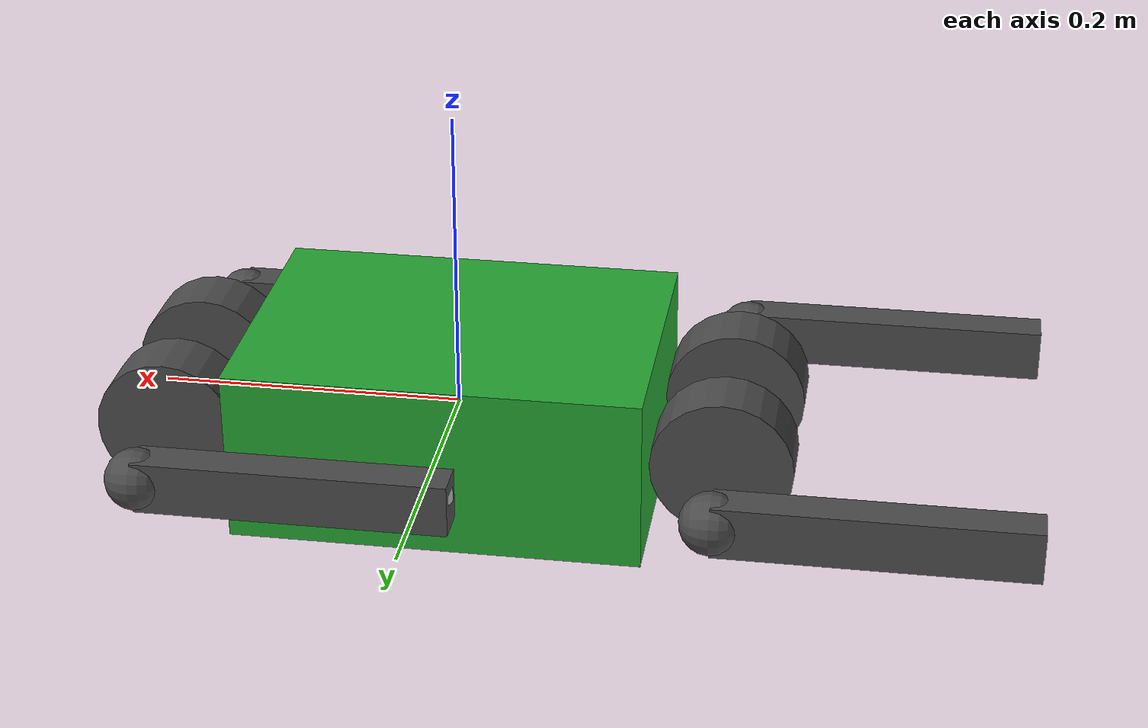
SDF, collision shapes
<sdf version='1.6'>
  <model name='go2_description'>
    <link name='body'>
      <pose frame=''>0 0 0 0 -0 0</pose>
      <inertial>
        <pose frame=''>0 0.004099 -0.0005 0 -0 0</pose>
        <mass>6.001</mass>
        <inertia>
          <ixx>0.0159533</ixx>
          <ixy>-3.66e-05</ixy>
          <ixz>-6.11e-05</ixz>
          <iyy>0.0378999</iyy>
          <iyz>-2.7498e-05</iyz>
          <izz>0.0457542</izz>
        </inertia>
      </inertial>
      <collision name='body_collision_collision'>
        <pose frame=''>0 0 0 0 -0 0</pose>
        <geometry>
          <box>
            <size>0.267 0.194 0.114</size>
          </box>
        </geometry>
        <surface>
          <contact>
            <ode/>
          </contact>
          <friction>
            <ode/>
          </friction>
        </surface>
      </collision>
      <collision name='body_fixed_joint_lump__imu_link_collision_1'>
        <pose frame=''>0 0 0 0 -0 0</pose>
        <geometry>
          <box>
            <size>0.001 0.001 0.001</size>
          </box>
        </geometry>
        <surface>
          <contact>
            <ode/>
          </contact>
          <friction>
            <ode>
              <mu>0.5</mu>
              <mu2>0.5</mu2>
            </ode>
          </friction>
        </surface>
      </collision>
      <visual name='body_visual'>
        <pose frame=''>0 0 0 0 -0 0</pose>
        <geometry>
          <box>
            <size>0.001 0.001 0.001</size>
          </box>
        </geometry>
        <material>
          <script>
            <name>Gazebo/Green</name>
            <uri>file://media/materials/scripts/gazebo.material</uri>
          </script>
        </material>
      </visual>
      <visual name='body_visual_visual_1'>
        <pose frame=''>0 0 0 0 -0 0</pose>
        <geometry>
          <mesh>
            <scale>1 1 1</scale>
            <uri>file:///home/lunarlab/Desktop/quadruped_sim_ws/src/quad-sdk/quad_simulator/go2_description/meshes/trunk.dae</uri>
          </mesh>
        </geometry>
        <material>
          <script>
            <name>Gazebo/Green</name>
            <uri>file://media/materials/scripts/gazebo.material</uri>
          </script>
        </material>
      </visual>
      <visual name='body_fixed_joint_lump__imu_link_visual_2'>
        <pose frame=''>0 0 0 0 -0 0</pose>
        <geometry>
          <box>
            <size>0.001 0.001 0.001</size>
          </box>
        </geometry>
        <material>
          <script>
            <name>Gazebo/Red</name>
            <uri>file://media/materials/scripts/gazebo.material</uri>
          </script>
        </material>
      </visual>
      <velocity_decay/>
      <velocity_decay/>
      <velocity_decay/>
      <gravity>1</gravity>
      <sensor name='imu_sensor' type='imu'>
        <always_on>true</always_on>
        <update_rate>1000</update_rate>
        <visualize>true</visualize>
        <topic>__default_topic__</topic>
        <plugin name='imu_plugin' filename='libgazebo_ros_imu_sensor.so'>
          <topicName>state/imu</topicName>
          <bodyName>imu_link</bodyName>
          <updateRateHZ>1000.0</updateRateHZ>
          <gaussianNoise>0.0</gaussianNoise>
          <xyzOffset>0 0 0</xyzOffset>
          <rpyOffset>0 0 0</rpyOffset>
          <frameName>imu_link</frameName>
          <initialOrientationAsReference>false</initialOrientationAsReference>
        </plugin>
        <pose frame=''>0 0 0 0 -0 0</pose>
      </sensor>
      <gravity>1</gravity>
      <velocity_decay/>
    </link>
    <link name='hip2'>
      <pose frame=''>0.1805 -0.047 0 0 -0 0</pose>
      <inertial>
        <pose frame=''>-0.003311 -0.000635 3.1e-05 0 -0 0</pose>
        <mass>0.696</mass>
        <inertia>
          <ixx>0.000469246</ixx>
          <ixy>9.409e-06</ixy>
          <ixz>-3.42e-07</ixz>
          <iyy>0.00080749</iyy>
          <iyz>4.66e-07</iyz>
          <izz>0.000552929</izz>
        </inertia>
      </inertial>
      <collision name='hip2_collision_collision'>
        <pose frame=''>0 0 0 1.5708 -0 0</pose>
        <geometry>
          <cylinder>
            <length>0.04</length>
            <radius>0.046</radius>
          </cylinder>
        </geometry>
        <surface>
          <contact>
            <ode/>
          </contact>
          <friction>
            <ode>
              <mu>0.5</mu>
              <mu2>0.5</mu2>
            </ode>
          </friction>
        </surface>
      </collision>
      <visual name='hip2_visual_visual'>
        <pose frame=''>0 0 0 -3.14159 -0 0</pose>
        <geometry>
          <mesh>
            <scale>1 1 1</scale>
            <uri>file:///home/lunarlab/Desktop/quadruped_sim_ws/src/quad-sdk/quad_simulator/go2_description/meshes/hip.dae</uri>
          </mesh>
        </geometry>
        <material>
          <script>
            <name>Gazebo/DarkGrey</name>
            <uri>file://media/materials/scripts/gazebo.material</uri>
          </script>
        </material>
      </visual>
      <gravity>1</gravity>
      <velocity_decay/>
    </link>
    <joint name='10' type='revolute'>
      <child>hip2</child>
      <parent>body</parent>
      <physics>
        <provide_feedback>true</provide_feedback>
      </physics>
      <axis>
        <xyz>1 0 0</xyz>
        <limit>
          <lower>-0.802851</lower>
          <upper>0.802851</upper>
          <effort>33.5</effort>
          <velocity>21</velocity>
        </limit>
        <dynamics>
          <damping>0</damping>
          <friction>0</friction>
          <spring_reference>0</spring_reference>
          <spring_stiffness>0</spring_stiffness>
        </dynamics>
        <use_parent_model_frame>0</use_parent_model_frame>
      </axis>
    </joint>
    <link name='upper2'>
      <pose frame=''>0.1805 -0.1308 0 3.14159 1.57079 3.14159</pose>
      <inertial>
        <pose frame=''>-0.003237 0.022327 -0.027326 0 -0 0</pose>
        <mass>1.013</mass>
        <inertia>
          <ixx>0.00552906</ixx>
          <ixy>-4.825e-06</ixy>
          <ixz>0.000343869</ixz>
          <iyy>0.00513934</iyy>
          <iyz>-2.2448e-05</iyz>
          <izz>0.00136779</izz>
        </inertia>
      </inertial>
      <collision name='upper2_collision_collision'>
        <pose frame=''>0 0 -0.1 3.14159 1.57079 3.14159</pose>
        <geometry>
          <box>
            <size>0.2 0.0245 0.034</size>
          </box>
        </geometry>
        <surface>
          <contact>
            <ode>
              <kp>1e+06</kp>
              <kd>1</kd>
            </ode>
          </contact>
          <friction>
            <ode>
              <mu>0.5</mu>
              <mu2>0.5</mu2>
            </ode>
          </friction>
        </surface>
      </collision>
      <visual name='upper2_visual_visual'>
        <pose frame=''>0 0 0 0 -0 0</pose>
        <geometry>
          <mesh>
            <scale>1 1 1</scale>
            <uri>file:///home/lunarlab/Desktop/quadruped_sim_ws/src/quad-sdk/quad_simulator/go2_description/meshes/thigh_mirror.dae</uri>
          </mesh>
        </geometry>
        <material>
          <script>
            <name>Gazebo/DarkGrey</name>
            <uri>file://media/materials/scripts/gazebo.material</uri>
          </script>
        </material>
      </visual>
      <gravity>1</gravity>
      <velocity_decay/>
      <self_collide>0</self_collide>
    </link>
    <joint name='4' type='revolute'>
      <child>upper2</child>
      <parent>hip2</parent>
      <physics>
        <provide_feedback>true</provide_feedback>
      </physics>
      <axis>
        <xyz>0 -1 0</xyz>
        <limit>
          <lower>-2.6179938779914944</lower>
          <upper>2.6179938779914944</upper>
          <effort>33.5</effort>
          <velocity>21</velocity>
        </limit>
        <dynamics>
          <damping>0</damping>
          <friction>0</friction>
          <spring_reference>0</spring_reference>
          <spring_stiffness>0</spring_stiffness>
        </dynamics>
        <use_parent_model_frame>0</use_parent_model_frame>
      </axis>
    </joint>
    <link name='lower2'>
      <pose frame=''>-0.0195 -0.1308 -0 3.14159 -1.57079 3.14159</pose>
      <inertial>
        <pose frame=''>0.006435 0 -0.107388 0 -0 0</pose>
        <mass>0.166</mass>
        <inertia>
          <ixx>0.00299797</ixx>
          <ixy>0</ixy>
          <ixz>-0.000141163</ixz>
          <iyy>0.00301402</iyy>
          <iyz>0</iyz>
          <izz>3.2426e-05</izz>
        </inertia>
      </inertial>
      <collision name='lower2_collision_collision'>
        <pose frame=''>0 0 -0.1 3.14159 1.57079 3.14159</pose>
        <geometry>
          <box>
            <size>0.2 0.016 0.016</size>
          </box>
        </geometry>
        <surface>
          <contact>
            <ode/>
          </contact>
          <friction>
            <ode>
              <mu>0.5</mu>
              <mu2>0.5</mu2>
            </ode>
          </friction>
        </surface>
      </collision>
      <visual name='lower2_visual_visual'>
        <pose frame=''>0 0 0 0 -0 0</pose>
        <geometry>
          <mesh>
            <scale>1 1 1</scale>
            <uri>file:///home/lunarlab/Desktop/quadruped_sim_ws/src/quad-sdk/quad_simulator/go2_description/meshes/calf.dae</uri>
          </mesh>
        </geometry>
        <material>
          <script>
            <uri>__default__</uri>
            <name>__default__</name>
          </script>
        </material>
      </visual>
      <gravity>1</gravity>
      <velocity_decay/>
      <self_collide>0</self_collide>
    </link>
    <joint name='5' type='revolute'>
      <child>lower2</child>
      <parent>upper2</parent>
      <physics>
        <provide_feedback>true</provide_feedback>
      </physics>
      <axis>
        <xyz>0 1 0</xyz>
        <limit>
          <lower>0.445058959258554</lower>
          <upper>2.2252947962927703</upper>
          <effort>33.5</effort>
          <velocity>21</velocity>
        </limit>
        <dynamics>
          <damping>0</damping>
          <friction>0</friction>
          <spring_reference>0</spring_reference>
          <spring_stiffness>0</spring_stiffness>
        </dynamics>
        <use_parent_model_frame>0</use_parent_model_frame>
      </axis>
    </joint>
    <link name='toe2'>
      <pose frame=''>0.1805 -0.1308 0 3.14159 -1.57079 3.14159</pose>
      <inertial>
        <pose frame=''>0 0 0 0 -0 0</pose>
        <mass>0.06</mass>
        <inertia>
          <ixx>9.6e-06</ixx>
          <ixy>0</ixy>
          <ixz>0</ixz>
          <iyy>9.6e-06</iyy>
          <iyz>0</iyz>
          <izz>9.6e-06</izz>
        </inertia>
      </inertial>
      <collision name='toe2_collision'>
        <pose frame=''>0 0 0 0 -0 0</pose>
        <geometry>
          <sphere>
            <radius>0.02</radius>
          </sphere>
        </geometry>
        <surface>
          <contact>
            <ode>
              <kp>1e+06</kp>
              <kd>1</kd>
            </ode>
          </contact>
          <friction>
            <ode>
              <mu>0.6</mu>
              <mu2>0.6</mu2>
            </ode>
          </friction>
        </surface>
      </collision>
      <visual name='toe2_visual_visual'>
        <pose frame=''>0 0 0 0 -0 0</pose>
        <geometry>
          <sphere>
            <radius>0.01</radius>
          </sphere>
        </geometry>
        <material>
          <script>
            <name>Gazebo/DarkGrey</name>
            <uri>file://media/materials/scripts/gazebo.material</uri>
          </script>
        </material>
      </visual>
      <velocity_decay/>
      <sensor name='toe2_contact' type='contact'>
        <plugin name='toe2_plugin' filename='libgazebo_ros_bumper.so'>
          <alwaysOn>true</alwaysOn>
          <updateRate>500</updateRate>
          <bumperTopicName>gazebo/toe2_contact_state</bumperTopicName>
          <frameName>world</frameName>
        </plugin>
        <contact>
          <collision>toe2_collision</collision>
          <topic>__default_topic__</topic>
        </contact>
        <update_rate>500</update_rate>
      </sensor>
      <gravity>1</gravity>
      <velocity_decay/>
      <self_collide>0</self_collide>
    </link>
    <joint name='jtoe2' type='fixed'>
      <child>toe2</child>
      <parent>lower2</parent>
      <axis>
        <dynamics>
          <spring_reference>0</spring_reference>
          <spring_stiffness>0</spring_stiffness>
        </dynamics>
        <xyz>0 0 1</xyz>
        <use_parent_model_frame>0</use_parent_model_frame>
        <limit>
          <lower>-1e+16</lower>
          <upper>1e+16</upper>
        </limit>
      </axis>
      <physics>
        <ode>
          <limit>
            <cfm>0</cfm>
            <erp>0.2</erp>
          </limit>
        </ode>
      </physics>
    </joint>
    <link name='hip3'>
      <pose frame=''>-0.1805 -0.047 0 0 -0 0</pose>
      <inertial>
        <pose frame=''>0.003311 -0.000635 3.1e-05 0 -0 0</pose>
        <mass>0.696</mass>
        <inertia>
          <ixx>0.000469246</ixx>
          <ixy>-9.409e-06</ixy>
          <ixz>3.42e-07</ixz>
          <iyy>0.00080749</iyy>
          <iyz>4.66e-07</iyz>
          <izz>0.000552929</izz>
        </inertia>
      </inertial>
      <collision name='hip3_collision_collision'>
        <pose frame=''>0 0 0 1.5708 -0 0</pose>
        <geometry>
          <cylinder>
            <length>0.04</length>
            <radius>0.046</radius>
          </cylinder>
        </geometry>
        <surface>
          <contact>
            <ode/>
          </contact>
          <friction>
            <ode>
              <mu>0.5</mu>
              <mu2>0.5</mu2>
            </ode>
          </friction>
        </surface>
      </collision>
      <visual name='hip3_visual_visual'>
        <pose frame=''>0 0 0 0 -0 3.14159</pose>
        <geometry>
          <mesh>
            <scale>1 1 1</scale>
            <uri>file:///home/lunarlab/Desktop/quadruped_sim_ws/src/quad-sdk/quad_simulator/go2_description/meshes/hip.dae</uri>
          </mesh>
        </geometry>
        <material>
          <script>
            <name>Gazebo/DarkGrey</name>
            <uri>file://media/materials/scripts/gazebo.material</uri>
          </script>
        </material>
      </visual>
      <gravity>1</gravity>
      <velocity_decay/>
    </link>
    <joint name='11' type='revolute'>
      <child>hip3</child>
      <parent>body</parent>
      <physics>
        <provide_feedback>true</provide_feedback>
      </physics>
      <axis>
        <xyz>1 0 0</xyz>
        <limit>
          <lower>-0.802851</lower>
          <upper>0.802851</upper>
          <effort>33.5</effort>
          <velocity>21</velocity>
        </limit>
        <dynamics>
          <damping>0</damping>
          <friction>0</friction>
          <spring_reference>0</spring_reference>
          <spring_stiffness>0</spring_stiffness>
        </dynamics>
        <use_parent_model_frame>0</use_parent_model_frame>
      </axis>
    </joint>
    <link name='upper3'>
      <pose frame=''>-0.1805 -0.1308 0 3.14159 1.57079 3.14159</pose>
      <inertial>
        <pose frame=''>-0.003237 0.022327 -0.027326 0 -0 0</pose>
        <mass>1.013</mass>
        <inertia>
          <ixx>0.00552906</ixx>
          <ixy>-4.825e-06</ixy>
          <ixz>0.000343869</ixz>
          <iyy>0.00513934</iyy>
          <iyz>-2.2448e-05</iyz>
          <izz>0.00136779</izz>
        </inertia>
      </inertial>
      <collision name='upper3_collision_collision'>
        <pose frame=''>0 0 -0.1 3.14159 1.57079 3.14159</pose>
        <geometry>
          <box>
            <size>0.2 0.0245 0.034</size>
          </box>
        </geometry>
        <surface>
          <contact>
            <ode>
              <kp>1e+06</kp>
              <kd>1</kd>
            </ode>
          </contact>
          <friction>
            <ode>
              <mu>0.5</mu>
              <mu2>0.5</mu2>
            </ode>
          </friction>
        </surface>
      </collision>
      <visual name='upper3_visual_visual'>
        <pose frame=''>0 0 0 0 -0 0</pose>
        <geometry>
          <mesh>
            <scale>1 1 1</scale>
            <uri>file:///home/lunarlab/Desktop/quadruped_sim_ws/src/quad-sdk/quad_simulator/go2_description/meshes/thigh_mirror.dae</uri>
          </mesh>
        </geometry>
        <material>
          <script>
            <name>Gazebo/DarkGrey</name>
            <uri>file://media/materials/scripts/gazebo.material</uri>
          </script>
        </material>
      </visual>
      <gravity>1</gravity>
      <velocity_decay/>
      <self_collide>0</self_collide>
    </link>
    <joint name='6' type='revolute'>
      <child>upper3</child>
      <parent>hip3</parent>
      <physics>
        <provide_feedback>true</provide_feedback>
      </physics>
      <axis>
        <xyz>0 -1 0</xyz>
        <limit>
          <lower>-2.6179938779914944</lower>
          <upper>2.6179938779914944</upper>
          <effort>33.5</effort>
          <velocity>21</velocity>
        </limit>
        <dynamics>
          <damping>0</damping>
          <friction>0</friction>
          <spring_reference>0</spring_reference>
          <spring_stiffness>0</spring_stiffness>
        </dynamics>
        <use_parent_model_frame>0</use_parent_model_frame>
      </axis>
    </joint>
    <link name='lower3'>
      <pose frame=''>-0.3805 -0.1308 -0 3.14159 -1.57079 3.14159</pose>
      <inertial>
        <pose frame=''>0.006435 0 -0.107388 0 -0 0</pose>
        <mass>0.166</mass>
        <inertia>
          <ixx>0.00299797</ixx>
          <ixy>0</ixy>
          <ixz>-0.000141163</ixz>
          <iyy>0.00301402</iyy>
          <iyz>0</iyz>
          <izz>3.2426e-05</izz>
        </inertia>
      </inertial>
      <collision name='lower3_collision_collision'>
        <pose frame=''>0 0 -0.1 3.14159 1.57079 3.14159</pose>
        <geometry>
          <box>
            <size>0.2 0.016 0.016</size>
          </box>
        </geometry>
        <surface>
          <contact>
            <ode/>
          </contact>
          <friction>
            <ode>
              <mu>0.5</mu>
              <mu2>0.5</mu2>
            </ode>
          </friction>
        </surface>
      </collision>
      <visual name='lower3_visual_visual'>
        <pose frame=''>0 0 0 0 -0 0</pose>
        <geometry>
          <mesh>
            <scale>1 1 1</scale>
            <uri>file:///home/lunarlab/Desktop/quadruped_sim_ws/src/quad-sdk/quad_simulator/go2_description/meshes/calf.dae</uri>
          </mesh>
        </geometry>
        <material>
          <script>
            <uri>__default__</uri>
            <name>__default__</name>
          </script>
        </material>
      </visual>
      <gravity>1</gravity>
      <velocity_decay/>
      <self_collide>0</self_collide>
    </link>
    <joint name='7' type='revolute'>
      <child>lower3</child>
      <parent>upper3</parent>
      <physics>
        <provide_feedback>true</provide_feedback>
      </physics>
      <axis>
        <xyz>0 1 0</xyz>
        <limit>
          <lower>0.445058959258554</lower>
          <upper>2.2252947962927703</upper>
          <effort>33.5</effort>
          <velocity>21</velocity>
        </limit>
        <dynamics>
          <damping>0</damping>
          <friction>0</friction>
          <spring_reference>0</spring_reference>
          <spring_stiffness>0</spring_stiffness>
        </dynamics>
        <use_parent_model_frame>0</use_parent_model_frame>
      </axis>
    </joint>
    <link name='toe3'>
      <pose frame=''>-0.1805 -0.1308 0 3.14159 -1.57079 3.14159</pose>
      <inertial>
        <pose frame=''>0 0 0 0 -0 0</pose>
        <mass>0.06</mass>
        <inertia>
          <ixx>9.6e-06</ixx>
          <ixy>0</ixy>
          <ixz>0</ixz>
          <iyy>9.6e-06</iyy>
          <iyz>0</iyz>
          <izz>9.6e-06</izz>
        </inertia>
      </inertial>
      <collision name='toe3_collision'>
        <pose frame=''>0 0 0 0 -0 0</pose>
        <geometry>
          <sphere>
            <radius>0.02</radius>
          </sphere>
        </geometry>
        <surface>
          <contact>
            <ode>
              <kp>1e+06</kp>
              <kd>1</kd>
            </ode>
          </contact>
          <friction>
            <ode>
              <mu>0.6</mu>
              <mu2>0.6</mu2>
            </ode>
          </friction>
        </surface>
      </collision>
      <visual name='toe3_visual_visual'>
        <pose frame=''>0 0 0 0 -0 0</pose>
        <geometry>
          <sphere>
            <radius>0.01</radius>
          </sphere>
        </geometry>
        <material>
          <script>
            <name>Gazebo/DarkGrey</name>
            <uri>file://media/materials/scripts/gazebo.material</uri>
          </script>
        </material>
      </visual>
      <velocity_decay/>
      <sensor name='toe3_contact' type='contact'>
        <plugin name='toe3_plugin' filename='libgazebo_ros_bumper.so'>
          <alwaysOn>true</alwaysOn>
          <updateRate>500</updateRate>
          <bumperTopicName>gazebo/toe3_contact_state</bumperTopicName>
          <frameName>world</frameName>
        </plugin>
        <contact>
          <collision>toe3_collision</collision>
          <topic>__default_topic__</topic>
        </contact>
        <update_rate>500</update_rate>
      </sensor>
      <gravity>1</gravity>
      <velocity_decay/>
      <self_collide>0</self_collide>
    </link>
    <joint name='jtoe3' type='fixed'>
      <child>toe3</child>
      <parent>lower3</parent>
      <axis>
        <dynamics>
          <spring_reference>0</spring_reference>
          <spring_stiffness>0</spring_stiffness>
        </dynamics>
        <xyz>0 0 1</xyz>
        <use_parent_model_frame>0</use_parent_model_frame>
        <limit>
          <lower>-1e+16</lower>
          <upper>1e+16</upper>
        </limit>
      </axis>
      <physics>
        <ode>
          <limit>
            <cfm>0</cfm>
            <erp>0.2</erp>
          </limit>
        </ode>
      </physics>
    </joint>
    <link name='hip0'>
      <pose frame=''>0.1805 0.047 0 0 -0 0</pose>
      <inertial>
        <pose frame=''>-0.003311 0.000635 3.1e-05 0 -0 0</pose>
        <mass>0.696</mass>
        <inertia>
          <ixx>0.000469246</ixx>
          <ixy>-9.409e-06</ixy>
          <ixz>-3.42e-07</ixz>
          <iyy>0.00080749</iyy>
          <iyz>-4.66e-07</iyz>
          <izz>0.000552929</izz>
        </inertia>
      </inertial>
      <collision name='hip0_collision_collision'>
        <pose frame=''>0 0 0 1.5708 -0 0</pose>
        <geometry>
          <cylinder>
            <length>0.04</length>
            <radius>0.046</radius>
          </cylinder>
        </geometry>
        <surface>
          <contact>
            <ode/>
          </contact>
          <friction>
            <ode>
              <mu>0.5</mu>
              <mu2>0.5</mu2>
            </ode>
          </friction>
        </surface>
      </collision>
      <visual name='hip0_visual_visual'>
        <pose frame=''>0 0 0 0 -0 0</pose>
        <geometry>
          <mesh>
            <scale>1 1 1</scale>
            <uri>file:///home/lunarlab/Desktop/quadruped_sim_ws/src/quad-sdk/quad_simulator/go2_description/meshes/hip.dae</uri>
          </mesh>
        </geometry>
        <material>
          <script>
            <name>Gazebo/DarkGrey</name>
            <uri>file://media/materials/scripts/gazebo.material</uri>
          </script>
        </material>
      </visual>
      <gravity>1</gravity>
      <velocity_decay/>
    </link>
    <joint name='8' type='revolute'>
      <child>hip0</child>
      <parent>body</parent>
      <physics>
        <provide_feedback>true</provide_feedback>
      </physics>
      <axis>
        <xyz>1 0 0</xyz>
        <limit>
          <lower>-0.802851</lower>
          <upper>0.802851</upper>
          <effort>33.5</effort>
          <velocity>21</velocity>
        </limit>
        <dynamics>
          <damping>0</damping>
          <friction>0</friction>
          <spring_reference>0</spring_reference>
          <spring_stiffness>0</spring_stiffness>
        </dynamics>
        <use_parent_model_frame>0</use_parent_model_frame>
      </axis>
    </joint>
    <link name='upper0'>
      <pose frame=''>0.1805 0.1308 0 3.14159 1.57079 3.14159</pose>
      <inertial>
        <pose frame=''>-0.003237 -0.022327 -0.027326 0 -0 0</pose>
        <mass>1.013</mass>
        <inertia>
          <ixx>0.00552906</ixx>
          <ixy>4.825e-06</ixy>
          <ixz>0.000343869</ixz>
          <iyy>0.00513934</iyy>
          <iyz>2.2448e-05</iyz>
          <izz>0.00136779</izz>
        </inertia>
      </inertial>
      <collision name='upper0_collision_collision'>
        <pose frame=''>0 0 -0.1 3.14159 1.57079 3.14159</pose>
        <geometry>
          <box>
            <size>0.2 0.0245 0.034</size>
          </box>
        </geometry>
        <surface>
          <contact>
            <ode>
              <kp>1e+06</kp>
              <kd>1</kd>
            </ode>
          </contact>
          <friction>
            <ode>
              <mu>0.5</mu>
              <mu2>0.5</mu2>
            </ode>
          </friction>
        </surface>
      </collision>
      <visual name='upper0_visual_visual'>
        <pose frame=''>0 0 0 0 -0 0</pose>
        <geometry>
          <mesh>
            <scale>1 1 1</scale>
            <uri>file:///home/lunarlab/Desktop/quadruped_sim_ws/src/quad-sdk/quad_simulator/go2_description/meshes/thigh.dae</uri>
          </mesh>
        </geometry>
        <material>
          <script>
            <name>Gazebo/DarkGrey</name>
            <uri>file://media/materials/scripts/gazebo.material</uri>
          </script>
        </material>
      </visual>
      <gravity>1</gravity>
      <velocity_decay/>
      <self_collide>0</self_collide>
    </link>
    <joint name='0' type='revolute'>
      <child>upper0</child>
      <parent>hip0</parent>
      <physics>
        <provide_feedback>true</provide_feedback>
      </physics>
      <axis>
        <xyz>0 -1 0</xyz>
        <limit>
          <lower>-2.6179938779914944</lower>
          <upper>2.6179938779914944</upper>
          <effort>33.5</effort>
          <velocity>21</velocity>
        </limit>
        <dynamics>
          <damping>0</damping>
          <friction>0</friction>
          <spring_reference>0</spring_reference>
          <spring_stiffness>0</spring_stiffness>
        </dynamics>
        <use_parent_model_frame>0</use_parent_model_frame>
      </axis>
    </joint>
    <link name='lower0'>
      <pose frame=''>-0.0195 0.1308 -0 3.14159 -1.57079 3.14159</pose>
      <inertial>
        <pose frame=''>0.006435 0 -0.107388 0 -0 0</pose>
        <mass>0.166</mass>
        <inertia>
          <ixx>0.00299797</ixx>
          <ixy>0</ixy>
          <ixz>-0.000141163</ixz>
          <iyy>0.00301402</iyy>
          <iyz>0</iyz>
          <izz>3.2426e-05</izz>
        </inertia>
      </inertial>
      <collision name='lower0_collision_collision'>
        <pose frame=''>0 0 -0.1 3.14159 1.57079 3.14159</pose>
        <geometry>
          <box>
            <size>0.2 0.016 0.016</size>
          </box>
        </geometry>
        <surface>
          <contact>
            <ode/>
          </contact>
          <friction>
            <ode>
              <mu>0.5</mu>
              <mu2>0.5</mu2>
            </ode>
          </friction>
        </surface>
      </collision>
      <visual name='lower0_visual_visual'>
        <pose frame=''>0 0 0 0 -0 0</pose>
        <geometry>
          <mesh>
            <scale>1 1 1</scale>
            <uri>file:///home/lunarlab/Desktop/quadruped_sim_ws/src/quad-sdk/quad_simulator/go2_description/meshes/calf.dae</uri>
          </mesh>
        </geometry>
        <material>
          <script>
            <uri>__default__</uri>
            <name>__default__</name>
          </script>
        </material>
      </visual>
      <gravity>1</gravity>
      <velocity_decay/>
      <self_collide>0</self_collide>
    </link>
    <joint name='1' type='revolute'>
      <child>lower0</child>
      <parent>upper0</parent>
      <physics>
        <provide_feedback>true</provide_feedback>
      </physics>
      <axis>
        <xyz>0 1 0</xyz>
        <limit>
          <lower>0.445058959258554</lower>
          <upper>2.2252947962927703</upper>
          <effort>33.5</effort>
          <velocity>21</velocity>
        </limit>
        <dynamics>
          <damping>0</damping>
          <friction>0</friction>
          <spring_reference>0</spring_reference>
          <spring_stiffness>0</spring_stiffness>
        </dynamics>
        <use_parent_model_frame>0</use_parent_model_frame>
      </axis>
    </joint>
    <link name='toe0'>
      <pose frame=''>0.1805 0.1308 0 3.14159 -1.57079 3.14159</pose>
      <inertial>
        <pose frame=''>0 0 0 0 -0 0</pose>
        <mass>0.06</mass>
        <inertia>
          <ixx>9.6e-06</ixx>
          <ixy>0</ixy>
          <ixz>0</ixz>
          <iyy>9.6e-06</iyy>
          <iyz>0</iyz>
          <izz>9.6e-06</izz>
        </inertia>
      </inertial>
      <collision name='toe0_collision'>
        <pose frame=''>0 0 0 0 -0 0</pose>
        <geometry>
          <sphere>
            <radius>0.02</radius>
          </sphere>
        </geometry>
        <surface>
          <contact>
            <ode>
              <kp>1e+06</kp>
              <kd>1</kd>
            </ode>
          </contact>
          <friction>
            <ode>
              <mu>0.6</mu>
              <mu2>0.6</mu2>
            </ode>
          </friction>
        </surface>
      </collision>
      <visual name='toe0_visual_visual'>
        <pose frame=''>0 0 0 0 -0 0</pose>
        <geometry>
          <sphere>
            <radius>0.01</radius>
          </sphere>
        </geometry>
        <material>
          <script>
            <name>Gazebo/DarkGrey</name>
            <uri>file://media/materials/scripts/gazebo.material</uri>
          </script>
        </material>
      </visual>
      <velocity_decay/>
      <sensor name='toe0_contact' type='contact'>
        <plugin name='toe0_plugin' filename='libgazebo_ros_bumper.so'>
          <alwaysOn>true</alwaysOn>
          <updateRate>500</updateRate>
          <bumperTopicName>gazebo/toe0_contact_state</bumperTopicName>
          <frameName>world</frameName>
        </plugin>
        <contact>
          <collision>toe0_collision</collision>
          <topic>__default_topic__</topic>
        </contact>
        <update_rate>500</update_rate>
      </sensor>
      <gravity>1</gravity>
      <velocity_decay/>
      <self_collide>0</self_collide>
    </link>
    <joint name='jtoe0' type='fixed'>
      <child>toe0</child>
      <parent>lower0</parent>
      <axis>
        <dynamics>
          <spring_reference>0</spring_reference>
          <spring_stiffness>0</spring_stiffness>
        </dynamics>
        <xyz>0 0 1</xyz>
        <use_parent_model_frame>0</use_parent_model_frame>
        <limit>
          <lower>-1e+16</lower>
          <upper>1e+16</upper>
        </limit>
      </axis>
      <physics>
        <ode>
          <limit>
            <cfm>0</cfm>
            <erp>0.2</erp>
          </limit>
        </ode>
      </physics>
    </joint>
    <link name='hip1'>
      <pose frame=''>-0.1805 0.047 0 0 -0 0</pose>
      <inertial>
        <pose frame=''>0.003311 0.000635 3.1e-05 0 -0 0</pose>
        <mass>0.696</mass>
        <inertia>
          <ixx>0.000469246</ixx>
          <ixy>9.409e-06</ixy>
          <ixz>3.42e-07</ixz>
          <iyy>0.00080749</iyy>
          <iyz>-4.66e-07</iyz>
          <izz>0.000552929</izz>
        </inertia>
      </inertial>
      <collision name='hip1_collision_collision'>
        <pose frame=''>0 0 0 1.5708 -0 0</pose>
        <geometry>
          <cylinder>
            <length>0.04</length>
            <radius>0.046</radius>
          </cylinder>
        </geometry>
        <surface>
          <contact>
            <ode/>
          </contact>
          <friction>
            <ode>
              <mu>0.5</mu>
              <mu2>0.5</mu2>
            </ode>
          </friction>
        </surface>
      </collision>
      <visual name='hip1_visual_visual'>
        <pose frame=''>0 0 0 3.14159 -0 3.14159</pose>
        <geometry>
          <mesh>
            <scale>1 1 1</scale>
            <uri>file:///home/lunarlab/Desktop/quadruped_sim_ws/src/quad-sdk/quad_simulator/go2_description/meshes/hip.dae</uri>
          </mesh>
        </geometry>
        <material>
          <script>
            <name>Gazebo/DarkGrey</name>
            <uri>file://media/materials/scripts/gazebo.material</uri>
          </script>
        </material>
      </visual>
      <gravity>1</gravity>
      <velocity_decay/>
    </link>
    <joint name='9' type='revolute'>
      <child>hip1</child>
      <parent>body</parent>
      <physics>
        <provide_feedback>true</provide_feedback>
      </physics>
      <axis>
        <xyz>1 0 0</xyz>
        <limit>
          <lower>-0.802851</lower>
          <upper>0.802851</upper>
          <effort>33.5</effort>
          <velocity>21</velocity>
        </limit>
        <dynamics>
          <damping>0</damping>
          <friction>0</friction>
          <spring_reference>0</spring_reference>
          <spring_stiffness>0</spring_stiffness>
        </dynamics>
        <use_parent_model_frame>0</use_parent_model_frame>
      </axis>
    </joint>
    <link name='upper1'>
      <pose frame=''>-0.1805 0.1308 0 3.14159 1.57079 3.14159</pose>
      <inertial>
        <pose frame=''>-0.003237 -0.022327 -0.027326 0 -0 0</pose>
        <mass>1.013</mass>
        <inertia>
          <ixx>0.00552906</ixx>
          <ixy>4.825e-06</ixy>
          <ixz>0.000343869</ixz>
          <iyy>0.00513934</iyy>
          <iyz>2.2448e-05</iyz>
          <izz>0.00136779</izz>
        </inertia>
      </inertial>
      <collision name='upper1_collision_collision'>
        <pose frame=''>0 0 -0.1 3.14159 1.57079 3.14159</pose>
        <geometry>
          <box>
            <size>0.2 0.0245 0.034</size>
          </box>
        </geometry>
        <surface>
          <contact>
            <ode>
              <kp>1e+06</kp>
              <kd>1</kd>
            </ode>
          </contact>
          <friction>
            <ode>
              <mu>0.5</mu>
              <mu2>0.5</mu2>
            </ode>
          </friction>
        </surface>
      </collision>
      <visual name='upper1_visual_visual'>
        <pose frame=''>0 0 0 0 -0 0</pose>
        <geometry>
          <mesh>
            <scale>1 1 1</scale>
            <uri>file:///home/lunarlab/Desktop/quadruped_sim_ws/src/quad-sdk/quad_simulator/go2_description/meshes/thigh.dae</uri>
          </mesh>
        </geometry>
        <material>
          <script>
            <name>Gazebo/DarkGrey</name>
            <uri>file://media/materials/scripts/gazebo.material</uri>
          </script>
        </material>
      </visual>
      <gravity>1</gravity>
      <velocity_decay/>
      <self_collide>0</self_collide>
    </link>
    <joint name='2' type='revolute'>
      <child>upper1</child>
      <parent>hip1</parent>
      <physics>
        <provide_feedback>true</provide_feedback>
      </physics>
      <axis>
        <xyz>0 -1 0</xyz>
        <limit>
          <lower>-2.6179938779914944</lower>
          <upper>2.6179938779914944</upper>
          <effort>33.5</effort>
          <velocity>21</velocity>
        </limit>
        <dynamics>
          <damping>0</damping>
          <friction>0</friction>
          <spring_reference>0</spring_reference>
          <spring_stiffness>0</spring_stiffness>
        </dynamics>
        <use_parent_model_frame>0</use_parent_model_frame>
      </axis>
    </joint>
    <link name='lower1'>
      <pose frame=''>-0.3805 0.1308 -0 3.14159 -1.57079 3.14159</pose>
      <inertial>
        <pose frame=''>0.006435 0 -0.107388 0 -0 0</pose>
        <mass>0.166</mass>
        <inertia>
          <ixx>0.00299797</ixx>
          <ixy>0</ixy>
          <ixz>-0.000141163</ixz>
          <iyy>0.00301402</iyy>
          <iyz>0</iyz>
          <izz>3.2426e-05</izz>
        </inertia>
      </inertial>
      <collision name='lower1_collision_collision'>
        <pose frame=''>0 0 -0.1 3.14159 1.57079 3.14159</pose>
        <geometry>
          <box>
            <size>0.2 0.016 0.016</size>
          </box>
        </geometry>
        <surface>
          <contact>
            <ode/>
          </contact>
          <friction>
            <ode>
              <mu>0.5</mu>
              <mu2>0.5</mu2>
            </ode>
          </friction>
        </surface>
      </collision>
      <visual name='lower1_visual_visual'>
        <pose frame=''>0 0 0 0 -0 0</pose>
        <geometry>
          <mesh>
            <scale>1 1 1</scale>
            <uri>file:///home/lunarlab/Desktop/quadruped_sim_ws/src/quad-sdk/quad_simulator/go2_description/meshes/calf.dae</uri>
          </mesh>
        </geometry>
        <material>
          <script>
            <uri>__default__</uri>
            <name>__default__</name>
          </script>
        </material>
      </visual>
      <gravity>1</gravity>
      <velocity_decay/>
      <self_collide>0</self_collide>
    </link>
    <joint name='3' type='revolute'>
      <child>lower1</child>
      <parent>upper1</parent>
      <physics>
        <provide_feedback>true</provide_feedback>
      </physics>
      <axis>
        <xyz>0 1 0</xyz>
        <limit>
          <lower>0.445058959258554</lower>
          <upper>2.2252947962927703</upper>
          <effort>33.5</effort>
          <velocity>21</velocity>
        </limit>
        <dynamics>
          <damping>0</damping>
          <friction>0</friction>
          <spring_reference>0</spring_reference>
          <spring_stiffness>0</spring_stiffness>
        </dynamics>
        <use_parent_model_frame>0</use_parent_model_frame>
      </axis>
    </joint>
    <link name='toe1'>
      <pose frame=''>-0.1805 0.1308 0 3.14159 -1.57079 3.14159</pose>
      <inertial>
        <pose frame=''>0 0 0 0 -0 0</pose>
        <mass>0.06</mass>
        <inertia>
          <ixx>9.6e-06</ixx>
          <ixy>0</ixy>
          <ixz>0</ixz>
          <iyy>9.6e-06</iyy>
          <iyz>0</iyz>
          <izz>9.6e-06</izz>
        </inertia>
      </inertial>
      <collision name='toe1_collision'>
        <pose frame=''>0 0 0 0 -0 0</pose>
        <geometry>
          <sphere>
            <radius>0.02</radius>
          </sphere>
        </geometry>
        <surface>
          <contact>
            <ode>
              <kp>1e+06</kp>
              <kd>1</kd>
            </ode>
          </contact>
          <friction>
            <ode>
              <mu>0.6</mu>
              <mu2>0.6</mu2>
            </ode>
          </friction>
        </surface>
      </collision>
      <visual name='toe1_visual_visual'>
        <pose frame=''>0 0 0 0 -0 0</pose>
        <geometry>
          <sphere>
            <radius>0.01</radius>
          </sphere>
        </geometry>
        <material>
          <script>
            <name>Gazebo/DarkGrey</name>
            <uri>file://media/materials/scripts/gazebo.material</uri>
          </script>
        </material>
      </visual>
      <velocity_decay/>
      <sensor name='toe1_contact' type='contact'>
        <plugin name='toe1_plugin' filename='libgazebo_ros_bumper.so'>
          <alwaysOn>true</alwaysOn>
          <updateRate>500</updateRate>
          <bumperTopicName>gazebo/toe1_contact_state</bumperTopicName>
          <frameName>world</frameName>
        </plugin>
        <contact>
          <collision>toe1_collision</collision>
          <topic>__default_topic__</topic>
        </contact>
        <update_rate>500</update_rate>
      </sensor>
      <gravity>1</gravity>
      <velocity_decay/>
      <self_collide>0</self_collide>
    </link>
    <joint name='jtoe1' type='fixed'>
      <child>toe1</child>
      <parent>lower1</parent>
      <axis>
        <dynamics>
          <spring_reference>0</spring_reference>
          <spring_stiffness>0</spring_stiffness>
        </dynamics>
        <xyz>0 0 1</xyz>
        <use_parent_model_frame>0</use_parent_model_frame>
        <limit>
          <lower>-1e+16</lower>
          <upper>1e+16</upper>
        </limit>
      </axis>
      <physics>
        <ode>
          <limit>
            <cfm>0</cfm>
            <erp>0.2</erp>
          </limit>
        </ode>
      </physics>
    </joint>
    <plugin name='gazebo_ros_control' filename='libgazebo_ros_control.so'>
      <robotSimType>gazebo_ros_control/DefaultRobotHWSim</robotSimType>
    </plugin>
    <plugin name='ground_truth_estimator' filename='libground_truth_estimator.so'>
      <updateRateHZ>500.0</updateRateHZ>
    </plugin>
    <static>0</static>
    <plugin name='gazebo_ros_force' filename='libgazebo_ros_force.so'>
      <topicName>/apply_force/trunk</topicName>
      <bodyName>body</bodyName>
      <xyzOffset>0 0 0</xyzOffset>
      <rpyOffset>0 -0 0</rpyOffset>
    </plugin>
  </model>
</sdf>
